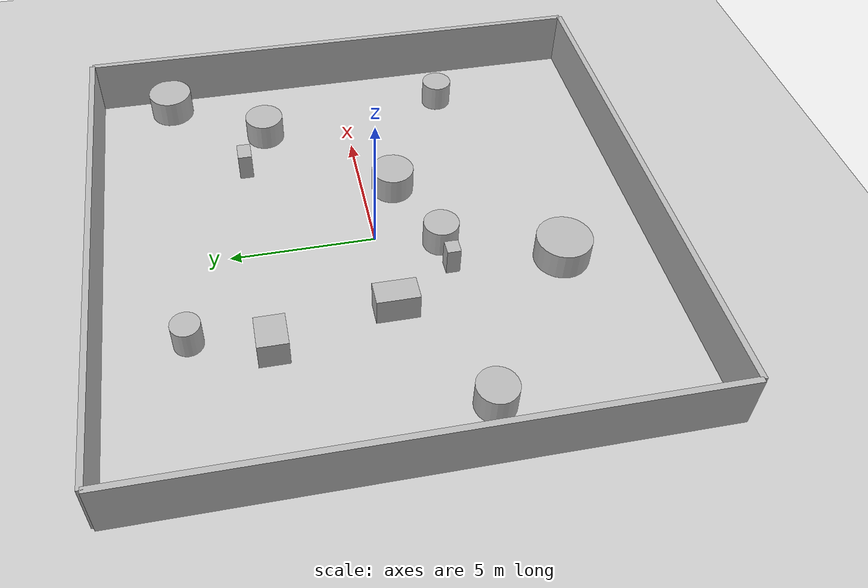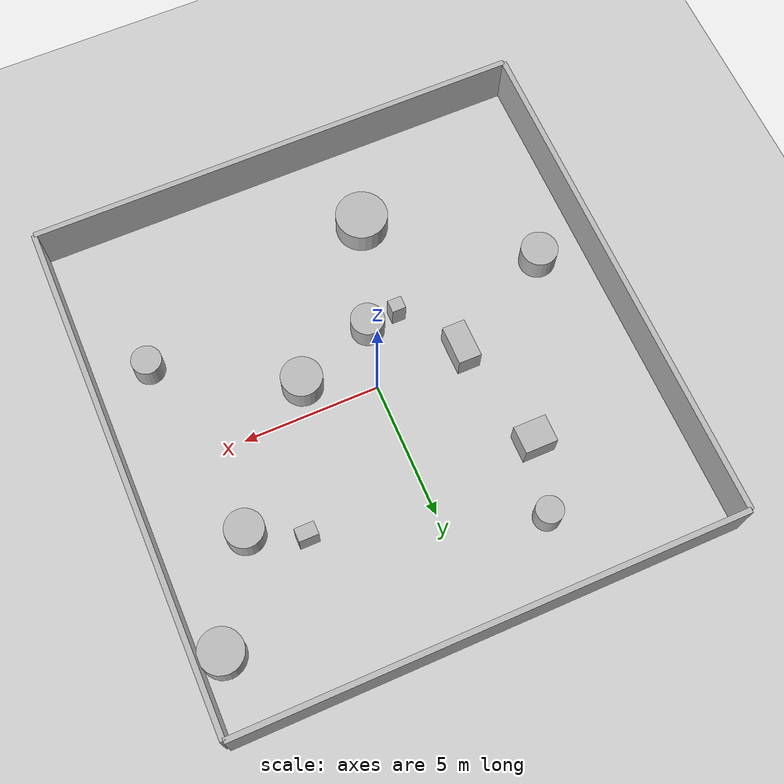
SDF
<?xml version="1.0"?>
<sdf version="1.6">
  <world name="env_55">

    <include><uri>model://ground_plane</uri></include>
    <include><uri>model://sun</uri></include>

    <!-- WALLS -->
    <model name="wall_north"><static>true</static><pose>0 9.346898549455974 1 0 0 0</pose>
      <link name="link"><collision name="collision">
        <geometry><box><size>18.239496403545207 0.2 2</size></box></geometry>
      </collision><visual name="visual">
        <geometry><box><size>18.239496403545207 0.2 2</size></box></geometry>
      </visual></link>
    </model>

    <model name="wall_south"><static>true</static><pose>0 -9.346898549455974 1 0 0 0</pose>
      <link name="link"><collision name="collision">
        <geometry><box><size>18.239496403545207 0.2 2</size></box></geometry>
      </collision><visual name="visual">
        <geometry><box><size>18.239496403545207 0.2 2</size></box></geometry>
      </visual></link>
    </model>

    <model name="wall_east"><static>true</static><pose>9.119748201772603 0 1 0 0 1.57</pose>
      <link name="link"><collision name="collision">
        <geometry><box><size>18.693797098911947 0.2 2</size></box></geometry>
      </collision><visual name="visual">
        <geometry><box><size>18.693797098911947 0.2 2</size></box></geometry>
      </visual></link>
    </model>

    <model name="wall_west"><static>true</static><pose>-9.119748201772603 0 1 0 0 1.57</pose>
      <link name="link"><collision name="collision">
        <geometry><box><size>18.693797098911947 0.2 2</size></box></geometry>
      </collision><visual name="visual">
        <geometry><box><size>18.693797098911947 0.2 2</size></box></geometry>
      </visual></link>
    </model>

    <!-- SENSOR -->

    <model name="lidar_sensor">
      <static>true</static>
      <pose>-5.625055794749617 5.596384559450492 0.4 0 0 0</pose>
      <link name="link">
        <sensor name="lidar" type="ray">
          <pose>0 0 0 0 0 0</pose>
          <visualize>true</visualize>
          <always_on>true</always_on>
          <update_rate>10</update_rate>
          <ray>
            <scan><horizontal>
              <samples>120</samples>
              <resolution>1</resolution>
              <min_angle>-3.14159</min_angle>
              <max_angle>3.14159</max_angle>
            </horizontal></scan>
            <range><min>0.15</min><max>20.0</max><resolution>0.01</resolution></range>
          </ray>
          <plugin name="lidar_plugin" filename="liblidar_plugin.so"/>
        </sensor>
      </link>
    </model>

    <!-- OBSTACLES -->

    <model name="obstacle_0">
      <static>true</static>
      <pose>-4.095079721831433 3.9979508305828073 0.5 0 0 0</pose>
      <link name="link">
        <collision name="collision">
          <geometry><box><size>1.19 1.0 1.0</size></box></geometry>
        </collision>
        <visual name="visual">
          <geometry><box><size>1.19 1.0 1.0</size></box></geometry>
        </visual>
      </link>
    </model>

    <model name="obstacle_1">
      <static>true</static>
      <pose>2.3920782729613954 -1.0815264814960122 0.5 0 0 0</pose>
      <link name="link">
        <collision name="collision">
          <geometry><cylinder><radius>0.74</radius><length>1.0</length></cylinder></geometry>
        </collision>
        <visual name="visual">
          <geometry><cylinder><radius>0.74</radius><length>1.0</length></cylinder></geometry>
        </visual>
      </link>
    </model>

    <model name="obstacle_2">
      <static>true</static>
      <pose>4.304166509181522 4.058760704106893 0.5 0 0 0</pose>
      <link name="link">
        <collision name="collision">
          <geometry><box><size>0.71 0.49 1.0</size></box></geometry>
        </collision>
        <visual name="visual">
          <geometry><box><size>0.71 0.49 1.0</size></box></geometry>
        </visual>
      </link>
    </model>

    <model name="obstacle_3">
      <static>true</static>
      <pose>-1.9711002962329216 -6.049536121191991 0.5 0 0 0</pose>
      <link name="link">
        <collision name="collision">
          <geometry><cylinder><radius>0.95</radius><length>1.0</length></cylinder></geometry>
        </collision>
        <visual name="visual">
          <geometry><cylinder><radius>0.95</radius><length>1.0</length></cylinder></geometry>
        </visual>
      </link>
    </model>

    <model name="obstacle_4">
      <static>true</static>
      <pose>7.096094791497869 -3.7753429611058014 0.5 0 0 0</pose>
      <link name="link">
        <collision name="collision">
          <geometry><cylinder><radius>0.54</radius><length>1.0</length></cylinder></geometry>
        </collision>
        <visual name="visual">
          <geometry><cylinder><radius>0.54</radius><length>1.0</length></cylinder></geometry>
        </visual>
      </link>
    </model>

    <model name="obstacle_5">
      <static>true</static>
      <pose>-0.5496814730855171 -2.172980375124812 0.5 0 0 0</pose>
      <link name="link">
        <collision name="collision">
          <geometry><cylinder><radius>0.61</radius><length>1.0</length></cylinder></geometry>
        </collision>
        <visual name="visual">
          <geometry><cylinder><radius>0.61</radius><length>1.0</length></cylinder></geometry>
        </visual>
      </link>
    </model>

    <model name="obstacle_6">
      <static>true</static>
      <pose>-1.7087152323364156 -2.2790583793910786 0.5 0 0 0</pose>
      <link name="link">
        <collision name="collision">
          <geometry><box><size>0.51 0.47 1.0</size></box></geometry>
        </collision>
        <visual name="visual">
          <geometry><box><size>0.51 0.47 1.0</size></box></geometry>
        </visual>
      </link>
    </model>

    <model name="obstacle_7">
      <static>true</static>
      <pose>-3.3787177855421175 6.559335990722811 0.5 0 0 0</pose>
      <link name="link">
        <collision name="collision">
          <geometry><cylinder><radius>0.49</radius><length>1.0</length></cylinder></geometry>
        </collision>
        <visual name="visual">
          <geometry><cylinder><radius>0.49</radius><length>1.0</length></cylinder></geometry>
        </visual>
      </link>
    </model>

    <model name="obstacle_8">
      <static>true</static>
      <pose>-7.29331499837892 -2.2635663307573974 0.5 0 0 0</pose>
      <link name="link">
        <collision name="collision">
          <geometry><cylinder><radius>0.67</radius><length>1.0</length></cylinder></geometry>
        </collision>
        <visual name="visual">
          <geometry><cylinder><radius>0.67</radius><length>1.0</length></cylinder></geometry>
        </visual>
      </link>
    </model>

    <model name="obstacle_9">
      <static>true</static>
      <pose>6.144611576130334 3.1444221208316616 0.5 0 0 0</pose>
      <link name="link">
        <collision name="collision">
          <geometry><cylinder><radius>0.69</radius><length>1.0</length></cylinder></geometry>
        </collision>
        <visual name="visual">
          <geometry><cylinder><radius>0.69</radius><length>1.0</length></cylinder></geometry>
        </visual>
      </link>
    </model>

    <model name="obstacle_10">
      <static>true</static>
      <pose>-3.2232329705898044 -0.07970727815533607 0.5 0 0 0</pose>
      <link name="link">
        <collision name="collision">
          <geometry><box><size>0.84 1.44 1.0</size></box></geometry>
        </collision>
        <visual name="visual">
          <geometry><box><size>0.84 1.44 1.0</size></box></geometry>
        </visual>
      </link>
    </model>

    <model name="obstacle_11">
      <static>true</static>
      <pose>8.268043206746038 6.588763728798208 0.5 0 0 0</pose>
      <link name="link">
        <collision name="collision">
          <geometry><cylinder><radius>0.79</radius><length>1.0</length></cylinder></geometry>
        </collision>
        <visual name="visual">
          <geometry><cylinder><radius>0.79</radius><length>1.0</length></cylinder></geometry>
        </visual>
      </link>
    </model>

  </world>
</sdf>
